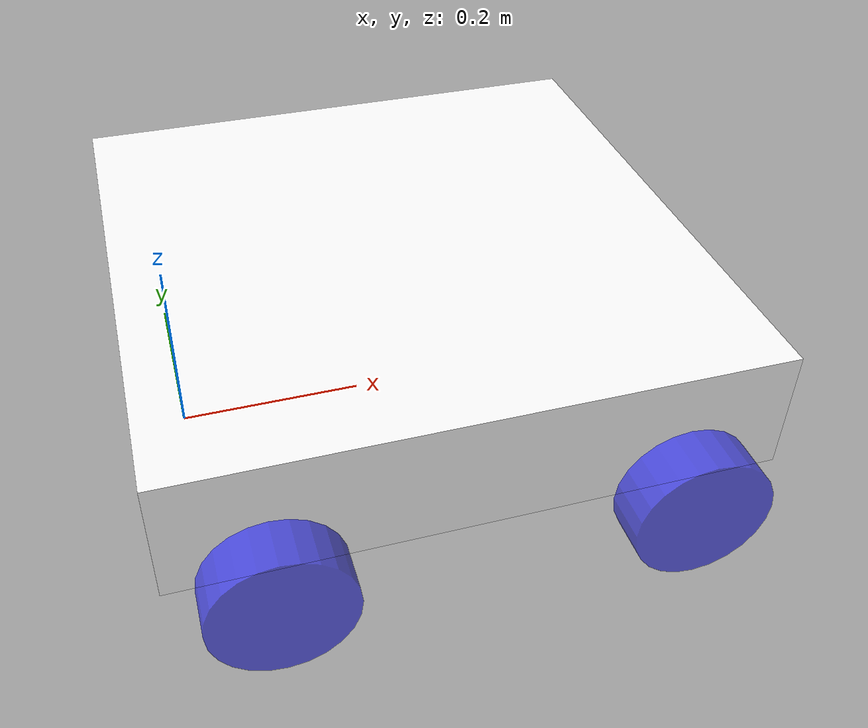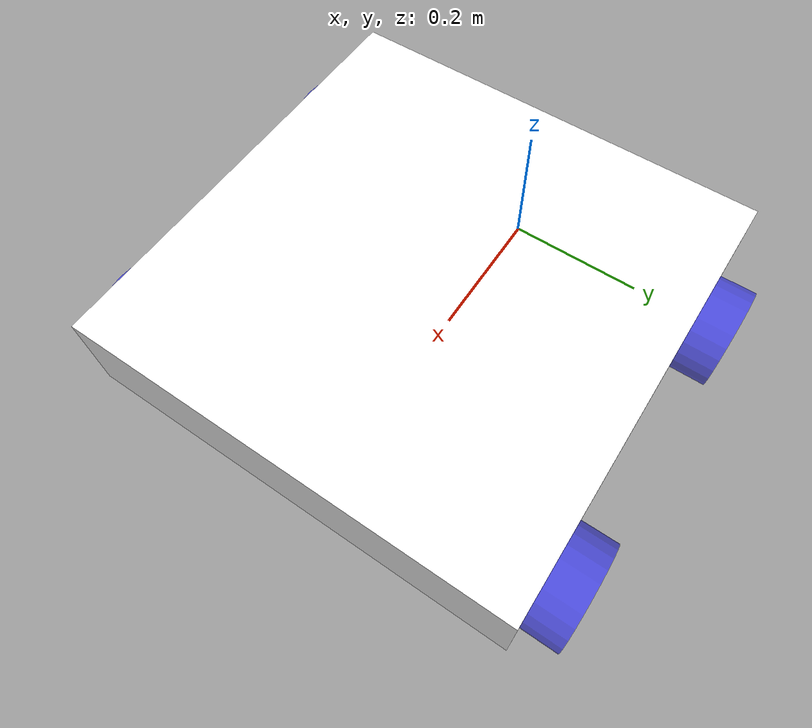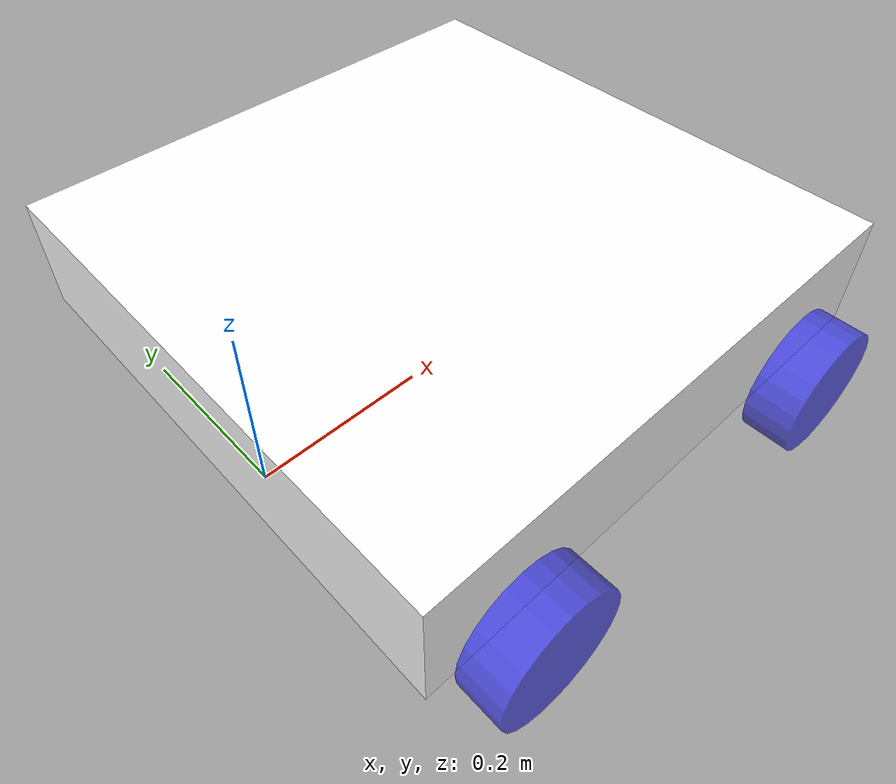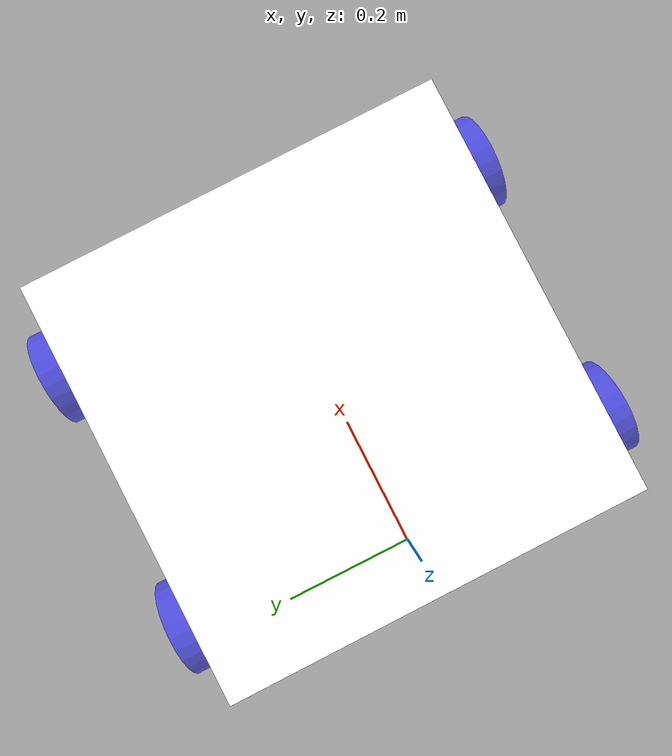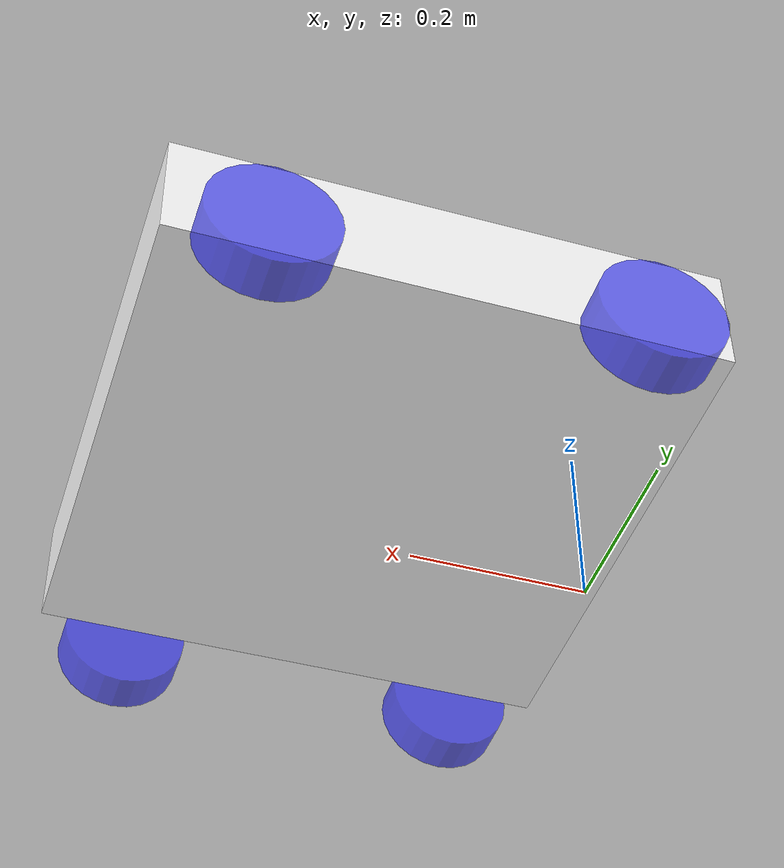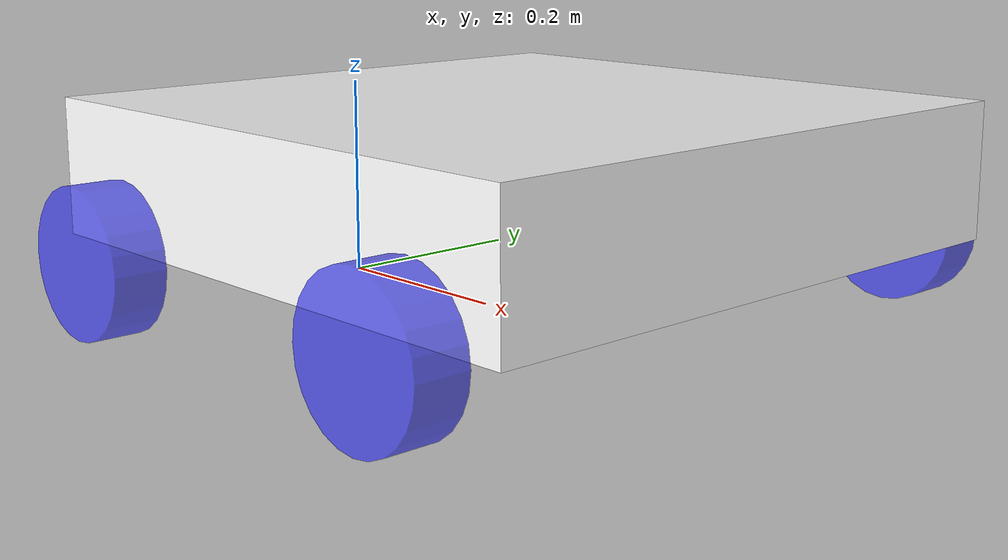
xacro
<?xml version="1.0"?>
<robot xmlns:xacro="http://www.ros.org/wiki/xacro">

    <!--INCLUDES-->

    <xacro:include filename="inertial_macros.xacro"/>

    <!-- COLORS-->

    <material name="white">
        <color rgba="1 1 1 1"/>
    </material>

    <material name="green">
        <color rgba="0 0.6 0 1"/>
    </material>

    <material name="yellow">
        <color rgba="0.8 0.8 0 1"/>
    </material>

    <material name="blue">
        <color rgba="0.2 0.2 1 0.7"/>
    </material>

    <material name="black">
        <color rgba="0 0 0 1"/>
    </material>

    <!-- BASE LINK-->

    <link name="base_link">

    </link>

    <!-- CHASSIS LINK-->

    <joint name="chassis_joint" type="fixed">
        <parent link="base_link"/>
        <child link="chassis_link"/>
        <origin xyz="0.1 0 0.05" rpy="0 0 0"/>
    </joint>

    <link name="chassis_link">
        <visual>
            <origin xyz="0.15 0 0.09" rpy="0 0 0"/>
            <geometry>
                <box size="0.6 0.6 0.13"/>
            </geometry>
            <material name="white"/>
        </visual>
        <collision>
            <origin xyz="0.15 0 0.09" rpy="0 0 0"/>
            <geometry>
                <box size="0.6 0.6 0.13"/>
            </geometry>
        </collision>
        <xacro:inertial_box mass="18" x="0.6" y="0.6" z="0.13">
            <origin xyz="0.15 0 0.09" rpy="0 0 0"/>
        </xacro:inertial_box>
    </link>

    <gazebo reference="chassis">
        <material>Gazebo/White</material>
    </gazebo>

    <!-- TOP LEFT WHEEL LINK-->

    <joint name="top_left_wheel_joint" type="continuous">
        <parent link="base_link"/>
        <child link="top_left_wheel_link"/>
        <origin xyz="0.45 0.325 0.07" rpy="-${pi/2} 0 0"/>
        <axis xyz="0 0 1"/>

    </joint>

    <link name="top_left_wheel_link">
        <visual>
            <geometry>
                <cylinder radius="0.07" length="0.05"/>
            </geometry>
            <material name="blue"/>
        </visual>
        <collision>
            <geometry>
                <cylinder radius="0.07" length="0.05"/>
            </geometry>
        </collision>
        <xacro:inertial_cylinder mass="0.5" length="0.05" radius="0.07">
            <origin xyz="0.45 0.325 0.07" rpy="0 0 0"/>
        </xacro:inertial_cylinder>

    </link>

    <gazebo reference="top_left_wheel">
        <material>blue</material>
    </gazebo>

    <!-- TOP RIGHT WHEEL LINK-->

    <joint name="top_right_wheel_joint" type="continuous">
        <parent link="base_link"/>
        <child link="top_right_wheel_link"/>
        <origin xyz="0.45 -0.325 0.07" rpy="${pi/2} 0 0"/>
        <axis xyz="0 0 -1"/>

    </joint>

    <link name="top_right_wheel_link">
        <visual>
            <geometry>
                <cylinder radius="0.07" length="0.05"/>
            </geometry>
            <material name="blue"/>
        </visual>
        <collision>
            <geometry>
                <cylinder radius="0.07" length="0.05"/>
            </geometry>
        </collision>
        <xacro:inertial_cylinder mass="0.5" length="0.05" radius="0.07">
            <origin xyz="0.45 -0.325 0.07" rpy="0 0 0"/>
        </xacro:inertial_cylinder>

    </link>

    <gazebo reference="top_right_wheel">
        <material>blue</material>
    </gazebo>

    <!-- BOTTOM LEFT WHEEL LINK-->

    <joint name="bottom_left_wheel_joint" type="continuous">
        <parent link="base_link"/>
        <child link="bottom_left_wheel_link"/>
        <origin xyz="0.05 0.325 0.07" rpy="-${pi/2} 0 0"/>
        <axis xyz="0 0 1"/>

    </joint>

    <link name="bottom_left_wheel_link">
        <visual>
            <geometry>
                <cylinder radius="0.07" length="0.05"/>
            </geometry>
            <material name="blue"/>
        </visual>
        <collision>
            <geometry>
                <cylinder radius="0.07" length="0.05"/>
            </geometry>
        </collision>
        <xacro:inertial_cylinder mass="0.5" length="0.05" radius="0.07">
            <origin xyz="0.05 0.325 0.07" rpy="0 0 0"/>
        </xacro:inertial_cylinder>

    </link>

    <gazebo reference="bottom_left_wheel">
        <material>blue</material>
    </gazebo>

    <!-- BOTTOM RIGHT WHEEL LINK-->

    <joint name="bottom_right_wheel_joint" type="continuous">
        <parent link="base_link"/>
        <child link="bottom_right_wheel_link"/>
        <origin xyz="0.05 -0.325 0.07" rpy="${pi/2} 0 0"/>
        <axis xyz="0 0 -1"/>

    </joint>

    <link name="bottom_right_wheel_link">
        <visual>
            <geometry>
                <cylinder radius="0.07" length="0.05"/>
            </geometry>
            <material name="blue"/>
        </visual>
        <collision>
            <geometry>
                <cylinder radius="0.07" length="0.05"/>
            </geometry>
        </collision>
        <xacro:inertial_cylinder mass="0.5" length="0.05" radius="0.07">
            <origin xyz="0.05 -0.325 0.07" rpy="0 0 0"/>
        </xacro:inertial_cylinder>

    </link>

    <gazebo reference="bottom_right_wheel">
        <material>blue</material>
    </gazebo>

</robot>

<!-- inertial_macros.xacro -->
<robot xmlns:xacro="http://www.ros.org/wiki/xacro" name="robot">

    <!-- Specify some standard inertial calculations https://en.wikipedia.org/wiki/List_of_moments_of_inertia -->
    <!-- These make use of xacro's mathematical functionality -->

    <xacro:macro name="inertial_sphere" params="mass radius *origin">
        <inertial>
            <xacro:insert_block name="origin"/>
            <mass value="${mass}" />
            <inertia ixx="${(2/5) * mass * (radius*radius)}" ixy="0.0" ixz="0.0"
                    iyy="${(2/5) * mass * (radius*radius)}" iyz="0.0"
                    izz="${(2/5) * mass * (radius*radius)}" />
        </inertial>
    </xacro:macro>

    <xacro:macro name="inertial_box" params="mass x y z *origin">
        <inertial>
            <xacro:insert_block name="origin"/>
            <mass value="${mass}" />
            <inertia ixx="${(1/12) * mass * (y*y+z*z)}" ixy="0.0" ixz="0.0"
                    iyy="${(1/12) * mass * (x*x+z*z)}" iyz="0.0"
                    izz="${(1/12) * mass * (x*x+y*y)}" />
        </inertial>
    </xacro:macro>

    <xacro:macro name="inertial_cylinder" params="mass length radius *origin">
        <inertial>
            <xacro:insert_block name="origin"/>
            <mass value="${mass}" />
            <inertia ixx="${(1/12) * mass * (3*radius*radius + length*length)}" ixy="0.0" ixz="0.0"
                    iyy="${(1/12) * mass * (3*radius*radius + length*length)}" iyz="0.0"
                    izz="${(1/2) * mass * (radius*radius)}" />
        </inertial>
    </xacro:macro>

</robot>
